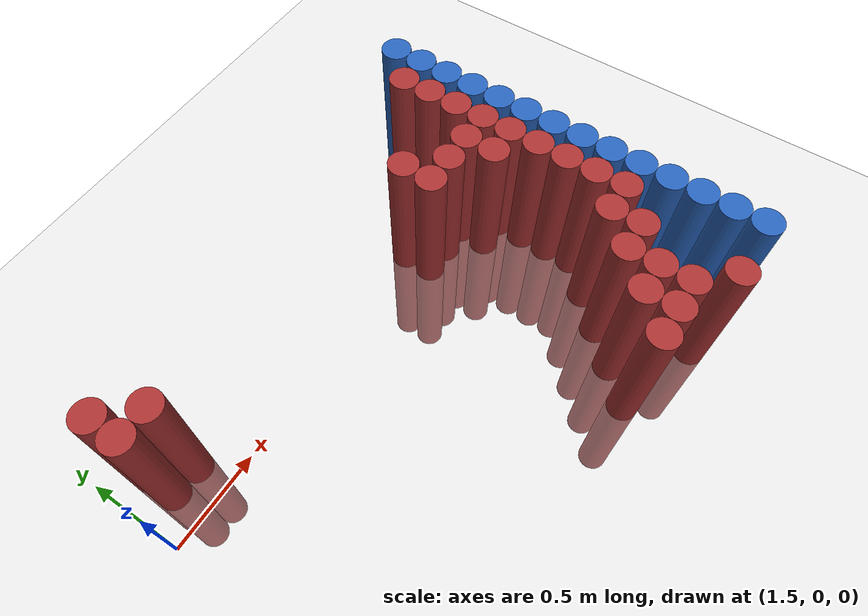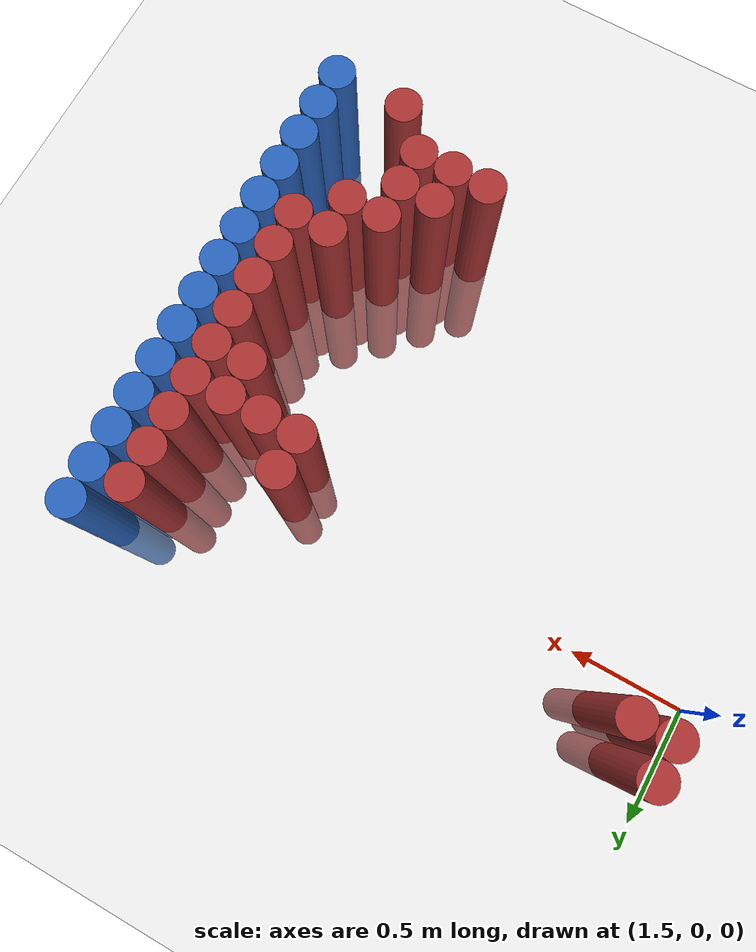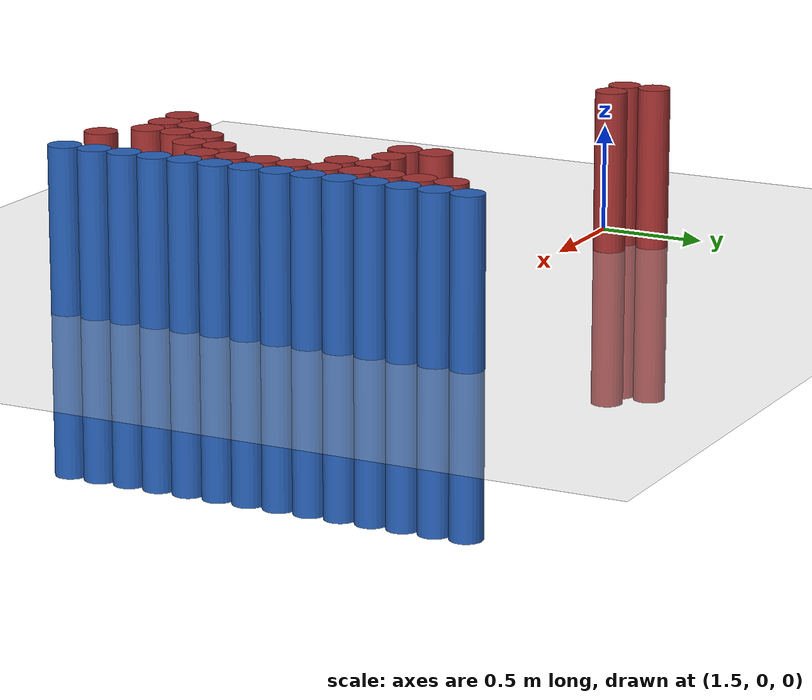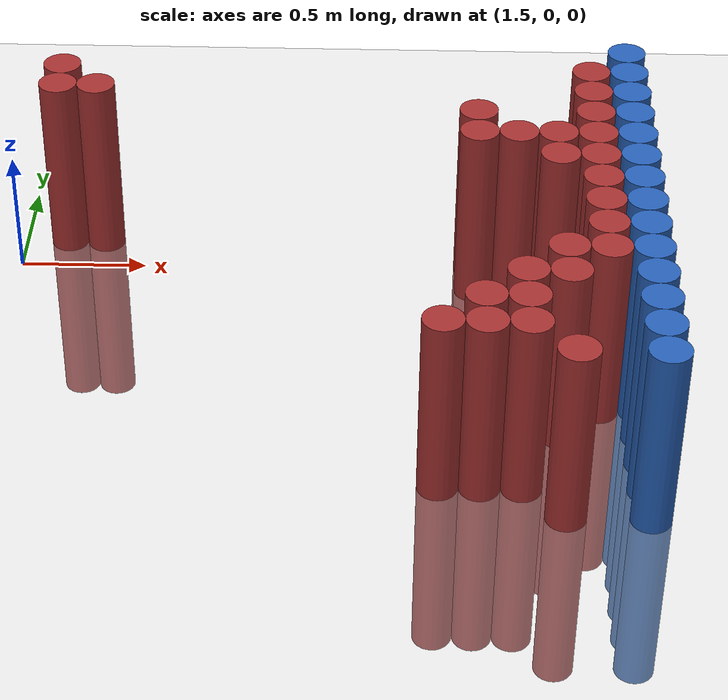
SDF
<sdf version="1.6">
 <world name="default">
  <model name="ground_plane">
   <static>1</static>
   <link name="link">
    <collision name="collision">
     <geometry><plane><normal>0 0 1</normal><size>100 100</size></plane></geometry>
     <surface><friction><ode><mu>100</mu><mu2>50</mu2></ode></friction></surface>
    </collision>
    <visual name="visual">
     <cast_shadows>0</cast_shadows>
     <geometry><plane><normal>0 0 1</normal><size>100 100</size></plane></geometry>
     <material>
      <script><uri>file://media/materials/scripts/gazebo.material</uri><name>Gazebo/Grey</name></script>
     </material>
    </visual>
   </link>
  </model>
  <model name="unit_cylinder_94">
   <static>1</static>
   <pose>3.925000 -1.475000 0.000000 0.000000 0.000000 0.000000</pose>
   <link name="link">
    <inertial>
     <mass>1</mass>
     <inertia><ixx>0.145833</ixx><ixy>0</ixy><ixz>0</ixz><iyy>0.145833</iyy><iyz>0</iyz><izz>0.125</izz></inertia>
    </inertial>
    <collision name="collision">
     <geometry><cylinder><radius>0.075000</radius><length>1.5</length></cylinder></geometry>
    </collision>
    <visual name="visual">
     <geometry><cylinder><radius>0.075000</radius><length>1.5</length></cylinder></geometry>
     <material>
      <ambient>0.152000 0.379000 0.720000 1</ambient>
      <diffuse>0.152000 0.379000 0.720000 1</diffuse>
     </material>
     <material>
      <script><name>Gazebo/Grey</name><uri>file://media/materials/scripts/gazebo.material</uri></script>
     </material>
    </visual>
   </link>
  </model>
  <model name="unit_cylinder_96">
   <static>1</static>
   <pose>3.925000 -1.325000 0.000000 0.000000 0.000000 0.000000</pose>
   <link name="link">
    <inertial>
     <mass>1</mass>
     <inertia><ixx>0.145833</ixx><ixy>0</ixy><ixz>0</ixz><iyy>0.145833</iyy><iyz>0</iyz><izz>0.125</izz></inertia>
    </inertial>
    <collision name="collision">
     <geometry><cylinder><radius>0.075000</radius><length>1.5</length></cylinder></geometry>
    </collision>
    <visual name="visual">
     <geometry><cylinder><radius>0.075000</radius><length>1.5</length></cylinder></geometry>
     <material>
      <ambient>0.152000 0.379000 0.720000 1</ambient>
      <diffuse>0.152000 0.379000 0.720000 1</diffuse>
     </material>
     <material>
      <script><name>Gazebo/Grey</name><uri>file://media/materials/scripts/gazebo.material</uri></script>
     </material>
    </visual>
   </link>
  </model>
  <model name="unit_cylinder_98">
   <static>1</static>
   <pose>3.925000 -1.175000 0.000000 0.000000 0.000000 0.000000</pose>
   <link name="link">
    <inertial>
     <mass>1</mass>
     <inertia><ixx>0.145833</ixx><ixy>0</ixy><ixz>0</ixz><iyy>0.145833</iyy><iyz>0</iyz><izz>0.125</izz></inertia>
    </inertial>
    <collision name="collision">
     <geometry><cylinder><radius>0.075000</radius><length>1.5</length></cylinder></geometry>
    </collision>
    <visual name="visual">
     <geometry><cylinder><radius>0.075000</radius><length>1.5</length></cylinder></geometry>
     <material>
      <ambient>0.152000 0.379000 0.720000 1</ambient>
      <diffuse>0.152000 0.379000 0.720000 1</diffuse>
     </material>
     <material>
      <script><name>Gazebo/Grey</name><uri>file://media/materials/scripts/gazebo.material</uri></script>
     </material>
    </visual>
   </link>
  </model>
  <model name="unit_cylinder_100">
   <static>1</static>
   <pose>3.925000 -1.025000 0.000000 0.000000 0.000000 0.000000</pose>
   <link name="link">
    <inertial>
     <mass>1</mass>
     <inertia><ixx>0.145833</ixx><ixy>0</ixy><ixz>0</ixz><iyy>0.145833</iyy><iyz>0</iyz><izz>0.125</izz></inertia>
    </inertial>
    <collision name="collision">
     <geometry><cylinder><radius>0.075000</radius><length>1.5</length></cylinder></geometry>
    </collision>
    <visual name="visual">
     <geometry><cylinder><radius>0.075000</radius><length>1.5</length></cylinder></geometry>
     <material>
      <ambient>0.152000 0.379000 0.720000 1</ambient>
      <diffuse>0.152000 0.379000 0.720000 1</diffuse>
     </material>
     <material>
      <script><name>Gazebo/Grey</name><uri>file://media/materials/scripts/gazebo.material</uri></script>
     </material>
    </visual>
   </link>
  </model>
  <model name="unit_cylinder_102">
   <static>1</static>
   <pose>3.925000 -0.875000 0.000000 0.000000 0.000000 0.000000</pose>
   <link name="link">
    <inertial>
     <mass>1</mass>
     <inertia><ixx>0.145833</ixx><ixy>0</ixy><ixz>0</ixz><iyy>0.145833</iyy><iyz>0</iyz><izz>0.125</izz></inertia>
    </inertial>
    <collision name="collision">
     <geometry><cylinder><radius>0.075000</radius><length>1.5</length></cylinder></geometry>
    </collision>
    <visual name="visual">
     <geometry><cylinder><radius>0.075000</radius><length>1.5</length></cylinder></geometry>
     <material>
      <ambient>0.152000 0.379000 0.720000 1</ambient>
      <diffuse>0.152000 0.379000 0.720000 1</diffuse>
     </material>
     <material>
      <script><name>Gazebo/Grey</name><uri>file://media/materials/scripts/gazebo.material</uri></script>
     </material>
    </visual>
   </link>
  </model>
  <model name="unit_cylinder_104">
   <static>1</static>
   <pose>3.925000 -0.725000 0.000000 0.000000 0.000000 0.000000</pose>
   <link name="link">
    <inertial>
     <mass>1</mass>
     <inertia><ixx>0.145833</ixx><ixy>0</ixy><ixz>0</ixz><iyy>0.145833</iyy><iyz>0</iyz><izz>0.125</izz></inertia>
    </inertial>
    <collision name="collision">
     <geometry><cylinder><radius>0.075000</radius><length>1.5</length></cylinder></geometry>
    </collision>
    <visual name="visual">
     <geometry><cylinder><radius>0.075000</radius><length>1.5</length></cylinder></geometry>
     <material>
      <ambient>0.152000 0.379000 0.720000 1</ambient>
      <diffuse>0.152000 0.379000 0.720000 1</diffuse>
     </material>
     <material>
      <script><name>Gazebo/Grey</name><uri>file://media/materials/scripts/gazebo.material</uri></script>
     </material>
    </visual>
   </link>
  </model>
  <model name="unit_cylinder_106">
   <static>1</static>
   <pose>3.925000 -0.575000 0.000000 0.000000 0.000000 0.000000</pose>
   <link name="link">
    <inertial>
     <mass>1</mass>
     <inertia><ixx>0.145833</ixx><ixy>0</ixy><ixz>0</ixz><iyy>0.145833</iyy><iyz>0</iyz><izz>0.125</izz></inertia>
    </inertial>
    <collision name="collision">
     <geometry><cylinder><radius>0.075000</radius><length>1.5</length></cylinder></geometry>
    </collision>
    <visual name="visual">
     <geometry><cylinder><radius>0.075000</radius><length>1.5</length></cylinder></geometry>
     <material>
      <ambient>0.152000 0.379000 0.720000 1</ambient>
      <diffuse>0.152000 0.379000 0.720000 1</diffuse>
     </material>
     <material>
      <script><name>Gazebo/Grey</name><uri>file://media/materials/scripts/gazebo.material</uri></script>
     </material>
    </visual>
   </link>
  </model>
  <model name="unit_cylinder_108">
   <static>1</static>
   <pose>3.925000 -0.425000 0.000000 0.000000 0.000000 0.000000</pose>
   <link name="link">
    <inertial>
     <mass>1</mass>
     <inertia><ixx>0.145833</ixx><ixy>0</ixy><ixz>0</ixz><iyy>0.145833</iyy><iyz>0</iyz><izz>0.125</izz></inertia>
    </inertial>
    <collision name="collision">
     <geometry><cylinder><radius>0.075000</radius><length>1.5</length></cylinder></geometry>
    </collision>
    <visual name="visual">
     <geometry><cylinder><radius>0.075000</radius><length>1.5</length></cylinder></geometry>
     <material>
      <ambient>0.152000 0.379000 0.720000 1</ambient>
      <diffuse>0.152000 0.379000 0.720000 1</diffuse>
     </material>
     <material>
      <script><name>Gazebo/Grey</name><uri>file://media/materials/scripts/gazebo.material</uri></script>
     </material>
    </visual>
   </link>
  </model>
  <model name="unit_cylinder_110">
   <static>1</static>
   <pose>3.925000 -0.275000 0.000000 0.000000 0.000000 0.000000</pose>
   <link name="link">
    <inertial>
     <mass>1</mass>
     <inertia><ixx>0.145833</ixx><ixy>0</ixy><ixz>0</ixz><iyy>0.145833</iyy><iyz>0</iyz><izz>0.125</izz></inertia>
    </inertial>
    <collision name="collision">
     <geometry><cylinder><radius>0.075000</radius><length>1.5</length></cylinder></geometry>
    </collision>
    <visual name="visual">
     <geometry><cylinder><radius>0.075000</radius><length>1.5</length></cylinder></geometry>
     <material>
      <ambient>0.152000 0.379000 0.720000 1</ambient>
      <diffuse>0.152000 0.379000 0.720000 1</diffuse>
     </material>
     <material>
      <script><name>Gazebo/Grey</name><uri>file://media/materials/scripts/gazebo.material</uri></script>
     </material>
    </visual>
   </link>
  </model>
  <model name="unit_cylinder_112">
   <static>1</static>
   <pose>3.925000 -0.125000 0.000000 0.000000 0.000000 0.000000</pose>
   <link name="link">
    <inertial>
     <mass>1</mass>
     <inertia><ixx>0.145833</ixx><ixy>0</ixy><ixz>0</ixz><iyy>0.145833</iyy><iyz>0</iyz><izz>0.125</izz></inertia>
    </inertial>
    <collision name="collision">
     <geometry><cylinder><radius>0.075000</radius><length>1.5</length></cylinder></geometry>
    </collision>
    <visual name="visual">
     <geometry><cylinder><radius>0.075000</radius><length>1.5</length></cylinder></geometry>
     <material>
      <ambient>0.152000 0.379000 0.720000 1</ambient>
      <diffuse>0.152000 0.379000 0.720000 1</diffuse>
     </material>
     <material>
      <script><name>Gazebo/Grey</name><uri>file://media/materials/scripts/gazebo.material</uri></script>
     </material>
    </visual>
   </link>
  </model>
  <model name="unit_cylinder_114">
   <static>1</static>
   <pose>3.925000 0.025000 0.000000 0.000000 0.000000 0.000000</pose>
   <link name="link">
    <inertial>
     <mass>1</mass>
     <inertia><ixx>0.145833</ixx><ixy>0</ixy><ixz>0</ixz><iyy>0.145833</iyy><iyz>0</iyz><izz>0.125</izz></inertia>
    </inertial>
    <collision name="collision">
     <geometry><cylinder><radius>0.075000</radius><length>1.5</length></cylinder></geometry>
    </collision>
    <visual name="visual">
     <geometry><cylinder><radius>0.075000</radius><length>1.5</length></cylinder></geometry>
     <material>
      <ambient>0.152000 0.379000 0.720000 1</ambient>
      <diffuse>0.152000 0.379000 0.720000 1</diffuse>
     </material>
     <material>
      <script><name>Gazebo/Grey</name><uri>file://media/materials/scripts/gazebo.material</uri></script>
     </material>
    </visual>
   </link>
  </model>
  <model name="unit_cylinder_116">
   <static>1</static>
   <pose>3.925000 0.175000 0.000000 0.000000 0.000000 0.000000</pose>
   <link name="link">
    <inertial>
     <mass>1</mass>
     <inertia><ixx>0.145833</ixx><ixy>0</ixy><ixz>0</ixz><iyy>0.145833</iyy><iyz>0</iyz><izz>0.125</izz></inertia>
    </inertial>
    <collision name="collision">
     <geometry><cylinder><radius>0.075000</radius><length>1.5</length></cylinder></geometry>
    </collision>
    <visual name="visual">
     <geometry><cylinder><radius>0.075000</radius><length>1.5</length></cylinder></geometry>
     <material>
      <ambient>0.152000 0.379000 0.720000 1</ambient>
      <diffuse>0.152000 0.379000 0.720000 1</diffuse>
     </material>
     <material>
      <script><name>Gazebo/Grey</name><uri>file://media/materials/scripts/gazebo.material</uri></script>
     </material>
    </visual>
   </link>
  </model>
  <model name="unit_cylinder_118">
   <static>1</static>
   <pose>3.925000 0.325000 0.000000 0.000000 0.000000 0.000000</pose>
   <link name="link">
    <inertial>
     <mass>1</mass>
     <inertia><ixx>0.145833</ixx><ixy>0</ixy><ixz>0</ixz><iyy>0.145833</iyy><iyz>0</iyz><izz>0.125</izz></inertia>
    </inertial>
    <collision name="collision">
     <geometry><cylinder><radius>0.075000</radius><length>1.5</length></cylinder></geometry>
    </collision>
    <visual name="visual">
     <geometry><cylinder><radius>0.075000</radius><length>1.5</length></cylinder></geometry>
     <material>
      <ambient>0.152000 0.379000 0.720000 1</ambient>
      <diffuse>0.152000 0.379000 0.720000 1</diffuse>
     </material>
     <material>
      <script><name>Gazebo/Grey</name><uri>file://media/materials/scripts/gazebo.material</uri></script>
     </material>
    </visual>
   </link>
  </model>
  <model name="unit_cylinder_120">
   <static>1</static>
   <pose>3.925000 0.475000 0.000000 0.000000 0.000000 0.000000</pose>
   <link name="link">
    <inertial>
     <mass>1</mass>
     <inertia><ixx>0.145833</ixx><ixy>0</ixy><ixz>0</ixz><iyy>0.145833</iyy><iyz>0</iyz><izz>0.125</izz></inertia>
    </inertial>
    <collision name="collision">
     <geometry><cylinder><radius>0.075000</radius><length>1.5</length></cylinder></geometry>
    </collision>
    <visual name="visual">
     <geometry><cylinder><radius>0.075000</radius><length>1.5</length></cylinder></geometry>
     <material>
      <ambient>0.152000 0.379000 0.720000 1</ambient>
      <diffuse>0.152000 0.379000 0.720000 1</diffuse>
     </material>
     <material>
      <script><name>Gazebo/Grey</name><uri>file://media/materials/scripts/gazebo.material</uri></script>
     </material>
    </visual>
   </link>
  </model>
  <model name="unit_cylinder_435">
   <static>1</static>
   <pose>1.675000 0.175000 0.000000 0.000000 0.000000 0.000000</pose>
   <link name="link">
    <inertial>
     <mass>1</mass>
     <inertia><ixx>0.145833</ixx><ixy>0</ixy><ixz>0</ixz><iyy>0.145833</iyy><iyz>0</iyz><izz>0.125</izz></inertia>
    </inertial>
    <collision name="collision">
     <geometry><cylinder><radius>0.075000</radius><length>1.5</length></cylinder></geometry>
    </collision>
    <visual name="visual">
     <geometry><cylinder><radius>0.075000</radius><length>1.5</length></cylinder></geometry>
     <material>
      <ambient>0.648000 0.192000 0.192000 1</ambient>
      <diffuse>0.648000 0.192000 0.192000 1</diffuse>
     </material>
     <material>
      <script><name>Gazebo/Grey</name><uri>file://media/materials/scripts/gazebo.material</uri></script>
     </material>
    </visual>
   </link>
  </model>
  <model name="unit_cylinder_436">
   <static>1</static>
   <pose>1.675000 0.325000 0.000000 0.000000 0.000000 0.000000</pose>
   <link name="link">
    <inertial>
     <mass>1</mass>
     <inertia><ixx>0.145833</ixx><ixy>0</ixy><ixz>0</ixz><iyy>0.145833</iyy><iyz>0</iyz><izz>0.125</izz></inertia>
    </inertial>
    <collision name="collision">
     <geometry><cylinder><radius>0.075000</radius><length>1.5</length></cylinder></geometry>
    </collision>
    <visual name="visual">
     <geometry><cylinder><radius>0.075000</radius><length>1.5</length></cylinder></geometry>
     <material>
      <ambient>0.648000 0.192000 0.192000 1</ambient>
      <diffuse>0.648000 0.192000 0.192000 1</diffuse>
     </material>
     <material>
      <script><name>Gazebo/Grey</name><uri>file://media/materials/scripts/gazebo.material</uri></script>
     </material>
    </visual>
   </link>
  </model>
  <model name="unit_cylinder_440">
   <static>1</static>
   <pose>1.825000 0.175000 0.000000 0.000000 0.000000 0.000000</pose>
   <link name="link">
    <inertial>
     <mass>1</mass>
     <inertia><ixx>0.145833</ixx><ixy>0</ixy><ixz>0</ixz><iyy>0.145833</iyy><iyz>0</iyz><izz>0.125</izz></inertia>
    </inertial>
    <collision name="collision">
     <geometry><cylinder><radius>0.075000</radius><length>1.5</length></cylinder></geometry>
    </collision>
    <visual name="visual">
     <geometry><cylinder><radius>0.075000</radius><length>1.5</length></cylinder></geometry>
     <material>
      <ambient>0.648000 0.192000 0.192000 1</ambient>
      <diffuse>0.648000 0.192000 0.192000 1</diffuse>
     </material>
     <material>
      <script><name>Gazebo/Grey</name><uri>file://media/materials/scripts/gazebo.material</uri></script>
     </material>
    </visual>
   </link>
  </model>
  <model name="unit_cylinder_470">
   <static>1</static>
   <pose>3.175000 -1.325000 0.000000 0.000000 0.000000 0.000000</pose>
   <link name="link">
    <inertial>
     <mass>1</mass>
     <inertia><ixx>0.145833</ixx><ixy>0</ixy><ixz>0</ixz><iyy>0.145833</iyy><iyz>0</iyz><izz>0.125</izz></inertia>
    </inertial>
    <collision name="collision">
     <geometry><cylinder><radius>0.075000</radius><length>1.5</length></cylinder></geometry>
    </collision>
    <visual name="visual">
     <geometry><cylinder><radius>0.075000</radius><length>1.5</length></cylinder></geometry>
     <material>
      <ambient>0.648000 0.192000 0.192000 1</ambient>
      <diffuse>0.648000 0.192000 0.192000 1</diffuse>
     </material>
     <material>
      <script><name>Gazebo/Grey</name><uri>file://media/materials/scripts/gazebo.material</uri></script>
     </material>
    </visual>
   </link>
  </model>
  <model name="unit_cylinder_471">
   <static>1</static>
   <pose>3.325000 -1.325000 0.000000 0.000000 0.000000 0.000000</pose>
   <link name="link">
    <inertial>
     <mass>1</mass>
     <inertia><ixx>0.145833</ixx><ixy>0</ixy><ixz>0</ixz><iyy>0.145833</iyy><iyz>0</iyz><izz>0.125</izz></inertia>
    </inertial>
    <collision name="collision">
     <geometry><cylinder><radius>0.075000</radius><length>1.5</length></cylinder></geometry>
    </collision>
    <visual name="visual">
     <geometry><cylinder><radius>0.075000</radius><length>1.5</length></cylinder></geometry>
     <material>
      <ambient>0.648000 0.192000 0.192000 1</ambient>
      <diffuse>0.648000 0.192000 0.192000 1</diffuse>
     </material>
     <material>
      <script><name>Gazebo/Grey</name><uri>file://media/materials/scripts/gazebo.material</uri></script>
     </material>
    </visual>
   </link>
  </model>
  <model name="unit_cylinder_472">
   <static>1</static>
   <pose>3.325000 -1.175000 0.000000 0.000000 0.000000 0.000000</pose>
   <link name="link">
    <inertial>
     <mass>1</mass>
     <inertia><ixx>0.145833</ixx><ixy>0</ixy><ixz>0</ixz><iyy>0.145833</iyy><iyz>0</iyz><izz>0.125</izz></inertia>
    </inertial>
    <collision name="collision">
     <geometry><cylinder><radius>0.075000</radius><length>1.5</length></cylinder></geometry>
    </collision>
    <visual name="visual">
     <geometry><cylinder><radius>0.075000</radius><length>1.5</length></cylinder></geometry>
     <material>
      <ambient>0.648000 0.192000 0.192000 1</ambient>
      <diffuse>0.648000 0.192000 0.192000 1</diffuse>
     </material>
     <material>
      <script><name>Gazebo/Grey</name><uri>file://media/materials/scripts/gazebo.material</uri></script>
     </material>
    </visual>
   </link>
  </model>
  <model name="unit_cylinder_473">
   <static>1</static>
   <pose>3.325000 -0.125000 0.000000 0.000000 0.000000 0.000000</pose>
   <link name="link">
    <inertial>
     <mass>1</mass>
     <inertia><ixx>0.145833</ixx><ixy>0</ixy><ixz>0</ixz><iyy>0.145833</iyy><iyz>0</iyz><izz>0.125</izz></inertia>
    </inertial>
    <collision name="collision">
     <geometry><cylinder><radius>0.075000</radius><length>1.5</length></cylinder></geometry>
    </collision>
    <visual name="visual">
     <geometry><cylinder><radius>0.075000</radius><length>1.5</length></cylinder></geometry>
     <material>
      <ambient>0.648000 0.192000 0.192000 1</ambient>
      <diffuse>0.648000 0.192000 0.192000 1</diffuse>
     </material>
     <material>
      <script><name>Gazebo/Grey</name><uri>file://media/materials/scripts/gazebo.material</uri></script>
     </material>
    </visual>
   </link>
  </model>
  <model name="unit_cylinder_474">
   <static>1</static>
   <pose>3.325000 0.025000 0.000000 0.000000 0.000000 0.000000</pose>
   <link name="link">
    <inertial>
     <mass>1</mass>
     <inertia><ixx>0.145833</ixx><ixy>0</ixy><ixz>0</ixz><iyy>0.145833</iyy><iyz>0</iyz><izz>0.125</izz></inertia>
    </inertial>
    <collision name="collision">
     <geometry><cylinder><radius>0.075000</radius><length>1.5</length></cylinder></geometry>
    </collision>
    <visual name="visual">
     <geometry><cylinder><radius>0.075000</radius><length>1.5</length></cylinder></geometry>
     <material>
      <ambient>0.648000 0.192000 0.192000 1</ambient>
      <diffuse>0.648000 0.192000 0.192000 1</diffuse>
     </material>
     <material>
      <script><name>Gazebo/Grey</name><uri>file://media/materials/scripts/gazebo.material</uri></script>
     </material>
    </visual>
   </link>
  </model>
  <model name="unit_cylinder_477">
   <static>1</static>
   <pose>3.475000 -1.325000 0.000000 0.000000 0.000000 0.000000</pose>
   <link name="link">
    <inertial>
     <mass>1</mass>
     <inertia><ixx>0.145833</ixx><ixy>0</ixy><ixz>0</ixz><iyy>0.145833</iyy><iyz>0</iyz><izz>0.125</izz></inertia>
    </inertial>
    <collision name="collision">
     <geometry><cylinder><radius>0.075000</radius><length>1.5</length></cylinder></geometry>
    </collision>
    <visual name="visual">
     <geometry><cylinder><radius>0.075000</radius><length>1.5</length></cylinder></geometry>
     <material>
      <ambient>0.648000 0.192000 0.192000 1</ambient>
      <diffuse>0.648000 0.192000 0.192000 1</diffuse>
     </material>
     <material>
      <script><name>Gazebo/Grey</name><uri>file://media/materials/scripts/gazebo.material</uri></script>
     </material>
    </visual>
   </link>
  </model>
  <model name="unit_cylinder_478">
   <static>1</static>
   <pose>3.475000 -1.175000 0.000000 0.000000 0.000000 0.000000</pose>
   <link name="link">
    <inertial>
     <mass>1</mass>
     <inertia><ixx>0.145833</ixx><ixy>0</ixy><ixz>0</ixz><iyy>0.145833</iyy><iyz>0</iyz><izz>0.125</izz></inertia>
    </inertial>
    <collision name="collision">
     <geometry><cylinder><radius>0.075000</radius><length>1.5</length></cylinder></geometry>
    </collision>
    <visual name="visual">
     <geometry><cylinder><radius>0.075000</radius><length>1.5</length></cylinder></geometry>
     <material>
      <ambient>0.648000 0.192000 0.192000 1</ambient>
      <diffuse>0.648000 0.192000 0.192000 1</diffuse>
     </material>
     <material>
      <script><name>Gazebo/Grey</name><uri>file://media/materials/scripts/gazebo.material</uri></script>
     </material>
    </visual>
   </link>
  </model>
  <model name="unit_cylinder_479">
   <static>1</static>
   <pose>3.475000 -1.025000 0.000000 0.000000 0.000000 0.000000</pose>
   <link name="link">
    <inertial>
     <mass>1</mass>
     <inertia><ixx>0.145833</ixx><ixy>0</ixy><ixz>0</ixz><iyy>0.145833</iyy><iyz>0</iyz><izz>0.125</izz></inertia>
    </inertial>
    <collision name="collision">
     <geometry><cylinder><radius>0.075000</radius><length>1.5</length></cylinder></geometry>
    </collision>
    <visual name="visual">
     <geometry><cylinder><radius>0.075000</radius><length>1.5</length></cylinder></geometry>
     <material>
      <ambient>0.648000 0.192000 0.192000 1</ambient>
      <diffuse>0.648000 0.192000 0.192000 1</diffuse>
     </material>
     <material>
      <script><name>Gazebo/Grey</name><uri>file://media/materials/scripts/gazebo.material</uri></script>
     </material>
    </visual>
   </link>
  </model>
  <model name="unit_cylinder_480">
   <static>1</static>
   <pose>3.475000 -0.125000 0.000000 0.000000 0.000000 0.000000</pose>
   <link name="link">
    <inertial>
     <mass>1</mass>
     <inertia><ixx>0.145833</ixx><ixy>0</ixy><ixz>0</ixz><iyy>0.145833</iyy><iyz>0</iyz><izz>0.125</izz></inertia>
    </inertial>
    <collision name="collision">
     <geometry><cylinder><radius>0.075000</radius><length>1.5</length></cylinder></geometry>
    </collision>
    <visual name="visual">
     <geometry><cylinder><radius>0.075000</radius><length>1.5</length></cylinder></geometry>
     <material>
      <ambient>0.648000 0.192000 0.192000 1</ambient>
      <diffuse>0.648000 0.192000 0.192000 1</diffuse>
     </material>
     <material>
      <script><name>Gazebo/Grey</name><uri>file://media/materials/scripts/gazebo.material</uri></script>
     </material>
    </visual>
   </link>
  </model>
  <model name="unit_cylinder_487">
   <static>1</static>
   <pose>3.625000 -1.475000 0.000000 0.000000 0.000000 0.000000</pose>
   <link name="link">
    <inertial>
     <mass>1</mass>
     <inertia><ixx>0.145833</ixx><ixy>0</ixy><ixz>0</ixz><iyy>0.145833</iyy><iyz>0</iyz><izz>0.125</izz></inertia>
    </inertial>
    <collision name="collision">
     <geometry><cylinder><radius>0.075000</radius><length>1.5</length></cylinder></geometry>
    </collision>
    <visual name="visual">
     <geometry><cylinder><radius>0.075000</radius><length>1.5</length></cylinder></geometry>
     <material>
      <ambient>0.648000 0.192000 0.192000 1</ambient>
      <diffuse>0.648000 0.192000 0.192000 1</diffuse>
     </material>
     <material>
      <script><name>Gazebo/Grey</name><uri>file://media/materials/scripts/gazebo.material</uri></script>
     </material>
    </visual>
   </link>
  </model>
  <model name="unit_cylinder_488">
   <static>1</static>
   <pose>3.625000 -1.025000 0.000000 0.000000 0.000000 0.000000</pose>
   <link name="link">
    <inertial>
     <mass>1</mass>
     <inertia><ixx>0.145833</ixx><ixy>0</ixy><ixz>0</ixz><iyy>0.145833</iyy><iyz>0</iyz><izz>0.125</izz></inertia>
    </inertial>
    <collision name="collision">
     <geometry><cylinder><radius>0.075000</radius><length>1.5</length></cylinder></geometry>
    </collision>
    <visual name="visual">
     <geometry><cylinder><radius>0.075000</radius><length>1.5</length></cylinder></geometry>
     <material>
      <ambient>0.648000 0.192000 0.192000 1</ambient>
      <diffuse>0.648000 0.192000 0.192000 1</diffuse>
     </material>
     <material>
      <script><name>Gazebo/Grey</name><uri>file://media/materials/scripts/gazebo.material</uri></script>
     </material>
    </visual>
   </link>
  </model>
  <model name="unit_cylinder_489">
   <static>1</static>
   <pose>3.625000 -0.875000 0.000000 0.000000 0.000000 0.000000</pose>
   <link name="link">
    <inertial>
     <mass>1</mass>
     <inertia><ixx>0.145833</ixx><ixy>0</ixy><ixz>0</ixz><iyy>0.145833</iyy><iyz>0</iyz><izz>0.125</izz></inertia>
    </inertial>
    <collision name="collision">
     <geometry><cylinder><radius>0.075000</radius><length>1.5</length></cylinder></geometry>
    </collision>
    <visual name="visual">
     <geometry><cylinder><radius>0.075000</radius><length>1.5</length></cylinder></geometry>
     <material>
      <ambient>0.648000 0.192000 0.192000 1</ambient>
      <diffuse>0.648000 0.192000 0.192000 1</diffuse>
     </material>
     <material>
      <script><name>Gazebo/Grey</name><uri>file://media/materials/scripts/gazebo.material</uri></script>
     </material>
    </visual>
   </link>
  </model>
  <model name="unit_cylinder_490">
   <static>1</static>
   <pose>3.625000 -0.275000 0.000000 0.000000 0.000000 0.000000</pose>
   <link name="link">
    <inertial>
     <mass>1</mass>
     <inertia><ixx>0.145833</ixx><ixy>0</ixy><ixz>0</ixz><iyy>0.145833</iyy><iyz>0</iyz><izz>0.125</izz></inertia>
    </inertial>
    <collision name="collision">
     <geometry><cylinder><radius>0.075000</radius><length>1.5</length></cylinder></geometry>
    </collision>
    <visual name="visual">
     <geometry><cylinder><radius>0.075000</radius><length>1.5</length></cylinder></geometry>
     <material>
      <ambient>0.648000 0.192000 0.192000 1</ambient>
      <diffuse>0.648000 0.192000 0.192000 1</diffuse>
     </material>
     <material>
      <script><name>Gazebo/Grey</name><uri>file://media/materials/scripts/gazebo.material</uri></script>
     </material>
    </visual>
   </link>
  </model>
  <model name="unit_cylinder_491">
   <static>1</static>
   <pose>3.625000 -0.125000 0.000000 0.000000 0.000000 0.000000</pose>
   <link name="link">
    <inertial>
     <mass>1</mass>
     <inertia><ixx>0.145833</ixx><ixy>0</ixy><ixz>0</ixz><iyy>0.145833</iyy><iyz>0</iyz><izz>0.125</izz></inertia>
    </inertial>
    <collision name="collision">
     <geometry><cylinder><radius>0.075000</radius><length>1.5</length></cylinder></geometry>
    </collision>
    <visual name="visual">
     <geometry><cylinder><radius>0.075000</radius><length>1.5</length></cylinder></geometry>
     <material>
      <ambient>0.648000 0.192000 0.192000 1</ambient>
      <diffuse>0.648000 0.192000 0.192000 1</diffuse>
     </material>
     <material>
      <script><name>Gazebo/Grey</name><uri>file://media/materials/scripts/gazebo.material</uri></script>
     </material>
    </visual>
   </link>
  </model>
  <model name="unit_cylinder_503">
   <static>1</static>
   <pose>3.775000 -0.875000 0.000000 0.000000 0.000000 0.000000</pose>
   <link name="link">
    <inertial>
     <mass>1</mass>
     <inertia><ixx>0.145833</ixx><ixy>0</ixy><ixz>0</ixz><iyy>0.145833</iyy><iyz>0</iyz><izz>0.125</izz></inertia>
    </inertial>
    <collision name="collision">
     <geometry><cylinder><radius>0.075000</radius><length>1.5</length></cylinder></geometry>
    </collision>
    <visual name="visual">
     <geometry><cylinder><radius>0.075000</radius><length>1.5</length></cylinder></geometry>
     <material>
      <ambient>0.648000 0.192000 0.192000 1</ambient>
      <diffuse>0.648000 0.192000 0.192000 1</diffuse>
     </material>
     <material>
      <script><name>Gazebo/Grey</name><uri>file://media/materials/scripts/gazebo.material</uri></script>
     </material>
    </visual>
   </link>
  </model>
  <model name="unit_cylinder_504">
   <static>1</static>
   <pose>3.775000 -0.725000 0.000000 0.000000 0.000000 0.000000</pose>
   <link name="link">
    <inertial>
     <mass>1</mass>
     <inertia><ixx>0.145833</ixx><ixy>0</ixy><ixz>0</ixz><iyy>0.145833</iyy><iyz>0</iyz><izz>0.125</izz></inertia>
    </inertial>
    <collision name="collision">
     <geometry><cylinder><radius>0.075000</radius><length>1.5</length></cylinder></geometry>
    </collision>
    <visual name="visual">
     <geometry><cylinder><radius>0.075000</radius><length>1.5</length></cylinder></geometry>
     <material>
      <ambient>0.648000 0.192000 0.192000 1</ambient>
      <diffuse>0.648000 0.192000 0.192000 1</diffuse>
     </material>
     <material>
      <script><name>Gazebo/Grey</name><uri>file://media/materials/scripts/gazebo.material</uri></script>
     </material>
    </visual>
   </link>
  </model>
  <model name="unit_cylinder_505">
   <static>1</static>
   <pose>3.775000 -0.575000 0.000000 0.000000 0.000000 0.000000</pose>
   <link name="link">
    <inertial>
     <mass>1</mass>
     <inertia><ixx>0.145833</ixx><ixy>0</ixy><ixz>0</ixz><iyy>0.145833</iyy><iyz>0</iyz><izz>0.125</izz></inertia>
    </inertial>
    <collision name="collision">
     <geometry><cylinder><radius>0.075000</radius><length>1.5</length></cylinder></geometry>
    </collision>
    <visual name="visual">
     <geometry><cylinder><radius>0.075000</radius><length>1.5</length></cylinder></geometry>
     <material>
      <ambient>0.648000 0.192000 0.192000 1</ambient>
      <diffuse>0.648000 0.192000 0.192000 1</diffuse>
     </material>
     <material>
      <script><name>Gazebo/Grey</name><uri>file://media/materials/scripts/gazebo.material</uri></script>
     </material>
    </visual>
   </link>
  </model>
  <model name="unit_cylinder_506">
   <static>1</static>
   <pose>3.775000 -0.425000 0.000000 0.000000 0.000000 0.000000</pose>
   <link name="link">
    <inertial>
     <mass>1</mass>
     <inertia><ixx>0.145833</ixx><ixy>0</ixy><ixz>0</ixz><iyy>0.145833</iyy><iyz>0</iyz><izz>0.125</izz></inertia>
    </inertial>
    <collision name="collision">
     <geometry><cylinder><radius>0.075000</radius><length>1.5</length></cylinder></geometry>
    </collision>
    <visual name="visual">
     <geometry><cylinder><radius>0.075000</radius><length>1.5</length></cylinder></geometry>
     <material>
      <ambient>0.648000 0.192000 0.192000 1</ambient>
      <diffuse>0.648000 0.192000 0.192000 1</diffuse>
     </material>
     <material>
      <script><name>Gazebo/Grey</name><uri>file://media/materials/scripts/gazebo.material</uri></script>
     </material>
    </visual>
   </link>
  </model>
  <model name="unit_cylinder_507">
   <static>1</static>
   <pose>3.775000 -0.275000 0.000000 0.000000 0.000000 0.000000</pose>
   <link name="link">
    <inertial>
     <mass>1</mass>
     <inertia><ixx>0.145833</ixx><ixy>0</ixy><ixz>0</ixz><iyy>0.145833</iyy><iyz>0</iyz><izz>0.125</izz></inertia>
    </inertial>
    <collision name="collision">
     <geometry><cylinder><radius>0.075000</radius><length>1.5</length></cylinder></geometry>
    </collision>
    <visual name="visual">
     <geometry><cylinder><radius>0.075000</radius><length>1.5</length></cylinder></geometry>
     <material>
      <ambient>0.648000 0.192000 0.192000 1</ambient>
      <diffuse>0.648000 0.192000 0.192000 1</diffuse>
     </material>
     <material>
      <script><name>Gazebo/Grey</name><uri>file://media/materials/scripts/gazebo.material</uri></script>
     </material>
    </visual>
   </link>
  </model>
  <model name="unit_cylinder_508">
   <static>1</static>
   <pose>3.775000 -0.125000 0.000000 0.000000 0.000000 0.000000</pose>
   <link name="link">
    <inertial>
     <mass>1</mass>
     <inertia><ixx>0.145833</ixx><ixy>0</ixy><ixz>0</ixz><iyy>0.145833</iyy><iyz>0</iyz><izz>0.125</izz></inertia>
    </inertial>
    <collision name="collision">
     <geometry><cylinder><radius>0.075000</radius><length>1.5</length></cylinder></geometry>
    </collision>
    <visual name="visual">
     <geometry><cylinder><radius>0.075000</radius><length>1.5</length></cylinder></geometry>
     <material>
      <ambient>0.648000 0.192000 0.192000 1</ambient>
      <diffuse>0.648000 0.192000 0.192000 1</diffuse>
     </material>
     <material>
      <script><name>Gazebo/Grey</name><uri>file://media/materials/scripts/gazebo.material</uri></script>
     </material>
    </visual>
   </link>
  </model>
  <model name="unit_cylinder_509">
   <static>1</static>
   <pose>3.775000 0.025000 0.000000 0.000000 0.000000 0.000000</pose>
   <link name="link">
    <inertial>
     <mass>1</mass>
     <inertia><ixx>0.145833</ixx><ixy>0</ixy><ixz>0</ixz><iyy>0.145833</iyy><iyz>0</iyz><izz>0.125</izz></inertia>
    </inertial>
    <collision name="collision">
     <geometry><cylinder><radius>0.075000</radius><length>1.5</length></cylinder></geometry>
    </collision>
    <visual name="visual">
     <geometry><cylinder><radius>0.075000</radius><length>1.5</length></cylinder></geometry>
     <material>
      <ambient>0.648000 0.192000 0.192000 1</ambient>
      <diffuse>0.648000 0.192000 0.192000 1</diffuse>
     </material>
     <material>
      <script><name>Gazebo/Grey</name><uri>file://media/materials/scripts/gazebo.material</uri></script>
     </material>
    </visual>
   </link>
  </model>
  <model name="unit_cylinder_510">
   <static>1</static>
   <pose>3.775000 0.175000 0.000000 0.000000 0.000000 0.000000</pose>
   <link name="link">
    <inertial>
     <mass>1</mass>
     <inertia><ixx>0.145833</ixx><ixy>0</ixy><ixz>0</ixz><iyy>0.145833</iyy><iyz>0</iyz><izz>0.125</izz></inertia>
    </inertial>
    <collision name="collision">
     <geometry><cylinder><radius>0.075000</radius><length>1.5</length></cylinder></geometry>
    </collision>
    <visual name="visual">
     <geometry><cylinder><radius>0.075000</radius><length>1.5</length></cylinder></geometry>
     <material>
      <ambient>0.648000 0.192000 0.192000 1</ambient>
      <diffuse>0.648000 0.192000 0.192000 1</diffuse>
     </material>
     <material>
      <script><name>Gazebo/Grey</name><uri>file://media/materials/scripts/gazebo.material</uri></script>
     </material>
    </visual>
   </link>
  </model>
  <model name="unit_cylinder_511">
   <static>1</static>
   <pose>3.775000 0.325000 0.000000 0.000000 0.000000 0.000000</pose>
   <link name="link">
    <inertial>
     <mass>1</mass>
     <inertia><ixx>0.145833</ixx><ixy>0</ixy><ixz>0</ixz><iyy>0.145833</iyy><iyz>0</iyz><izz>0.125</izz></inertia>
    </inertial>
    <collision name="collision">
     <geometry><cylinder><radius>0.075000</radius><length>1.5</length></cylinder></geometry>
    </collision>
    <visual name="visual">
     <geometry><cylinder><radius>0.075000</radius><length>1.5</length></cylinder></geometry>
     <material>
      <ambient>0.648000 0.192000 0.192000 1</ambient>
      <diffuse>0.648000 0.192000 0.192000 1</diffuse>
     </material>
     <material>
      <script><name>Gazebo/Grey</name><uri>file://media/materials/scripts/gazebo.material</uri></script>
     </material>
    </visual>
   </link>
  </model>
  <model name="unit_cylinder_537">
   <static>1</static>
   <pose>3.925000 -1.475000 0.000000 0.000000 0.000000 0.000000</pose>
   <link name="link">
    <inertial>
     <mass>1</mass>
     <inertia><ixx>0.145833</ixx><ixy>0</ixy><ixz>0</ixz><iyy>0.145833</iyy><iyz>0</iyz><izz>0.125</izz></inertia>
    </inertial>
    <collision name="collision">
     <geometry><cylinder><radius>0.075000</radius><length>1.5</length></cylinder></geometry>
    </collision>
    <visual name="visual">
     <geometry><cylinder><radius>0.075000</radius><length>1.5</length></cylinder></geometry>
     <material>
      <ambient>0.152000 0.379000 0.720000 1</ambient>
      <diffuse>0.152000 0.379000 0.720000 1</diffuse>
     </material>
     <material>
      <script><name>Gazebo/Grey</name><uri>file://media/materials/scripts/gazebo.material</uri></script>
     </material>
    </visual>
   </link>
  </model>
  <model name="unit_cylinder_538">
   <static>1</static>
   <pose>3.925000 -1.325000 0.000000 0.000000 0.000000 0.000000</pose>
   <link name="link">
    <inertial>
     <mass>1</mass>
     <inertia><ixx>0.145833</ixx><ixy>0</ixy><ixz>0</ixz><iyy>0.145833</iyy><iyz>0</iyz><izz>0.125</izz></inertia>
    </inertial>
    <collision name="collision">
     <geometry><cylinder><radius>0.075000</radius><length>1.5</length></cylinder></geometry>
    </collision>
    <visual name="visual">
     <geometry><cylinder><radius>0.075000</radius><length>1.5</length></cylinder></geometry>
     <material>
      <ambient>0.152000 0.379000 0.720000 1</ambient>
      <diffuse>0.152000 0.379000 0.720000 1</diffuse>
     </material>
     <material>
      <script><name>Gazebo/Grey</name><uri>file://media/materials/scripts/gazebo.material</uri></script>
     </material>
    </visual>
   </link>
  </model>
  <model name="unit_cylinder_539">
   <static>1</static>
   <pose>3.925000 -1.175000 0.000000 0.000000 0.000000 0.000000</pose>
   <link name="link">
    <inertial>
     <mass>1</mass>
     <inertia><ixx>0.145833</ixx><ixy>0</ixy><ixz>0</ixz><iyy>0.145833</iyy><iyz>0</iyz><izz>0.125</izz></inertia>
    </inertial>
    <collision name="collision">
     <geometry><cylinder><radius>0.075000</radius><length>1.5</length></cylinder></geometry>
    </collision>
    <visual name="visual">
     <geometry><cylinder><radius>0.075000</radius><length>1.5</length></cylinder></geometry>
     <material>
      <ambient>0.152000 0.379000 0.720000 1</ambient>
      <diffuse>0.152000 0.379000 0.720000 1</diffuse>
     </material>
     <material>
      <script><name>Gazebo/Grey</name><uri>file://media/materials/scripts/gazebo.material</uri></script>
     </material>
    </visual>
   </link>
  </model>
  <model name="unit_cylinder_540">
   <static>1</static>
   <pose>3.925000 -1.025000 0.000000 0.000000 0.000000 0.000000</pose>
   <link name="link">
    <inertial>
     <mass>1</mass>
     <inertia><ixx>0.145833</ixx><ixy>0</ixy><ixz>0</ixz><iyy>0.145833</iyy><iyz>0</iyz><izz>0.125</izz></inertia>
    </inertial>
    <collision name="collision">
     <geometry><cylinder><radius>0.075000</radius><length>1.5</length></cylinder></geometry>
    </collision>
    <visual name="visual">
     <geometry><cylinder><radius>0.075000</radius><length>1.5</length></cylinder></geometry>
     <material>
      <ambient>0.152000 0.379000 0.720000 1</ambient>
      <diffuse>0.152000 0.379000 0.720000 1</diffuse>
     </material>
     <material>
      <script><name>Gazebo/Grey</name><uri>file://media/materials/scripts/gazebo.material</uri></script>
     </material>
    </visual>
   </link>
  </model>
  <model name="unit_cylinder_541">
   <static>1</static>
   <pose>3.925000 -0.875000 0.000000 0.000000 0.000000 0.000000</pose>
   <link name="link">
    <inertial>
     <mass>1</mass>
     <inertia><ixx>0.145833</ixx><ixy>0</ixy><ixz>0</ixz><iyy>0.145833</iyy><iyz>0</iyz><izz>0.125</izz></inertia>
    </inertial>
    <collision name="collision">
     <geometry><cylinder><radius>0.075000</radius><length>1.5</length></cylinder></geometry>
    </collision>
    <visual name="visual">
     <geometry><cylinder><radius>0.075000</radius><length>1.5</length></cylinder></geometry>
     <material>
      <ambient>0.152000 0.379000 0.720000 1</ambient>
      <diffuse>0.152000 0.379000 0.720000 1</diffuse>
     </material>
     <material>
      <script><name>Gazebo/Grey</name><uri>file://media/materials/scripts/gazebo.material</uri></script>
     </material>
    </visual>
   </link>
  </model>
  <model name="unit_cylinder_542">
   <static>1</static>
   <pose>3.925000 -0.725000 0.000000 0.000000 0.000000 0.000000</pose>
   <link name="link">
    <inertial>
     <mass>1</mass>
     <inertia><ixx>0.145833</ixx><ixy>0</ixy><ixz>0</ixz><iyy>0.145833</iyy><iyz>0</iyz><izz>0.125</izz></inertia>
    </inertial>
    <collision name="collision">
     <geometry><cylinder><radius>0.075000</radius><length>1.5</length></cylinder></geometry>
    </collision>
    <visual name="visual">
     <geometry><cylinder><radius>0.075000</radius><length>1.5</length></cylinder></geometry>
     <material>
      <ambient>0.152000 0.379000 0.720000 1</ambient>
      <diffuse>0.152000 0.379000 0.720000 1</diffuse>
     </material>
     <material>
      <script><name>Gazebo/Grey</name><uri>file://media/materials/scripts/gazebo.material</uri></script>
     </material>
    </visual>
   </link>
  </model>
  <model name="unit_cylinder_543">
   <static>1</static>
   <pose>3.925000 -0.575000 0.000000 0.000000 0.000000 0.000000</pose>
   <link name="link">
    <inertial>
     <mass>1</mass>
     <inertia><ixx>0.145833</ixx><ixy>0</ixy><ixz>0</ixz><iyy>0.145833</iyy><iyz>0</iyz><izz>0.125</izz></inertia>
    </inertial>
    <collision name="collision">
     <geometry><cylinder><radius>0.075000</radius><length>1.5</length></cylinder></geometry>
    </collision>
    <visual name="visual">
     <geometry><cylinder><radius>0.075000</radius><length>1.5</length></cylinder></geometry>
     <material>
      <ambient>0.152000 0.379000 0.720000 1</ambient>
      <diffuse>0.152000 0.379000 0.720000 1</diffuse>
     </material>
     <material>
      <script><name>Gazebo/Grey</name><uri>file://media/materials/scripts/gazebo.material</uri></script>
     </material>
    </visual>
   </link>
  </model>
  <model name="unit_cylinder_544">
   <static>1</static>
   <pose>3.925000 -0.425000 0.000000 0.000000 0.000000 0.000000</pose>
   <link name="link">
    <inertial>
     <mass>1</mass>
     <inertia><ixx>0.145833</ixx><ixy>0</ixy><ixz>0</ixz><iyy>0.145833</iyy><iyz>0</iyz><izz>0.125</izz></inertia>
    </inertial>
    <collision name="collision">
     <geometry><cylinder><radius>0.075000</radius><length>1.5</length></cylinder></geometry>
    </collision>
    <visual name="visual">
     <geometry><cylinder><radius>0.075000</radius><length>1.5</length></cylinder></geometry>
     <material>
      <ambient>0.152000 0.379000 0.720000 1</ambient>
      <diffuse>0.152000 0.379000 0.720000 1</diffuse>
     </material>
     <material>
      <script><name>Gazebo/Grey</name><uri>file://media/materials/scripts/gazebo.material</uri></script>
     </material>
    </visual>
   </link>
  </model>
  <model name="unit_cylinder_545">
   <static>1</static>
   <pose>3.925000 -0.275000 0.000000 0.000000 0.000000 0.000000</pose>
   <link name="link">
    <inertial>
     <mass>1</mass>
     <inertia><ixx>0.145833</ixx><ixy>0</ixy><ixz>0</ixz><iyy>0.145833</iyy><iyz>0</iyz><izz>0.125</izz></inertia>
    </inertial>
    <collision name="collision">
     <geometry><cylinder><radius>0.075000</radius><length>1.5</length></cylinder></geometry>
    </collision>
    <visual name="visual">
     <geometry><cylinder><radius>0.075000</radius><length>1.5</length></cylinder></geometry>
     <material>
      <ambient>0.152000 0.379000 0.720000 1</ambient>
      <diffuse>0.152000 0.379000 0.720000 1</diffuse>
     </material>
     <material>
      <script><name>Gazebo/Grey</name><uri>file://media/materials/scripts/gazebo.material</uri></script>
     </material>
    </visual>
   </link>
  </model>
  <model name="unit_cylinder_546">
   <static>1</static>
   <pose>3.925000 -0.125000 0.000000 0.000000 0.000000 0.000000</pose>
   <link name="link">
    <inertial>
     <mass>1</mass>
     <inertia><ixx>0.145833</ixx><ixy>0</ixy><ixz>0</ixz><iyy>0.145833</iyy><iyz>0</iyz><izz>0.125</izz></inertia>
    </inertial>
    <collision name="collision">
     <geometry><cylinder><radius>0.075000</radius><length>1.5</length></cylinder></geometry>
    </collision>
    <visual name="visual">
     <geometry><cylinder><radius>0.075000</radius><length>1.5</length></cylinder></geometry>
     <material>
      <ambient>0.152000 0.379000 0.720000 1</ambient>
      <diffuse>0.152000 0.379000 0.720000 1</diffuse>
     </material>
     <material>
      <script><name>Gazebo/Grey</name><uri>file://media/materials/scripts/gazebo.material</uri></script>
     </material>
    </visual>
   </link>
  </model>
  <model name="unit_cylinder_547">
   <static>1</static>
   <pose>3.925000 0.025000 0.000000 0.000000 0.000000 0.000000</pose>
   <link name="link">
    <inertial>
     <mass>1</mass>
     <inertia><ixx>0.145833</ixx><ixy>0</ixy><ixz>0</ixz><iyy>0.145833</iyy><iyz>0</iyz><izz>0.125</izz></inertia>
    </inertial>
    <collision name="collision">
     <geometry><cylinder><radius>0.075000</radius><length>1.5</length></cylinder></geometry>
    </collision>
    <visual name="visual">
     <geometry><cylinder><radius>0.075000</radius><length>1.5</length></cylinder></geometry>
     <material>
      <ambient>0.152000 0.379000 0.720000 1</ambient>
      <diffuse>0.152000 0.379000 0.720000 1</diffuse>
     </material>
     <material>
      <script><name>Gazebo/Grey</name><uri>file://media/materials/scripts/gazebo.material</uri></script>
     </material>
    </visual>
   </link>
  </model>
  <model name="unit_cylinder_548">
   <static>1</static>
   <pose>3.925000 0.175000 0.000000 0.000000 0.000000 0.000000</pose>
   <link name="link">
    <inertial>
     <mass>1</mass>
     <inertia><ixx>0.145833</ixx><ixy>0</ixy><ixz>0</ixz><iyy>0.145833</iyy><iyz>0</iyz><izz>0.125</izz></inertia>
    </inertial>
    <collision name="collision">
     <geometry><cylinder><radius>0.075000</radius><length>1.5</length></cylinder></geometry>
    </collision>
    <visual name="visual">
     <geometry><cylinder><radius>0.075000</radius><length>1.5</length></cylinder></geometry>
     <material>
      <ambient>0.152000 0.379000 0.720000 1</ambient>
      <diffuse>0.152000 0.379000 0.720000 1</diffuse>
     </material>
     <material>
      <script><name>Gazebo/Grey</name><uri>file://media/materials/scripts/gazebo.material</uri></script>
     </material>
    </visual>
   </link>
  </model>
  <model name="unit_cylinder_549">
   <static>1</static>
   <pose>3.925000 0.325000 0.000000 0.000000 0.000000 0.000000</pose>
   <link name="link">
    <inertial>
     <mass>1</mass>
     <inertia><ixx>0.145833</ixx><ixy>0</ixy><ixz>0</ixz><iyy>0.145833</iyy><iyz>0</iyz><izz>0.125</izz></inertia>
    </inertial>
    <collision name="collision">
     <geometry><cylinder><radius>0.075000</radius><length>1.5</length></cylinder></geometry>
    </collision>
    <visual name="visual">
     <geometry><cylinder><radius>0.075000</radius><length>1.5</length></cylinder></geometry>
     <material>
      <ambient>0.152000 0.379000 0.720000 1</ambient>
      <diffuse>0.152000 0.379000 0.720000 1</diffuse>
     </material>
     <material>
      <script><name>Gazebo/Grey</name><uri>file://media/materials/scripts/gazebo.material</uri></script>
     </material>
    </visual>
   </link>
  </model>
 </world>
</sdf>
